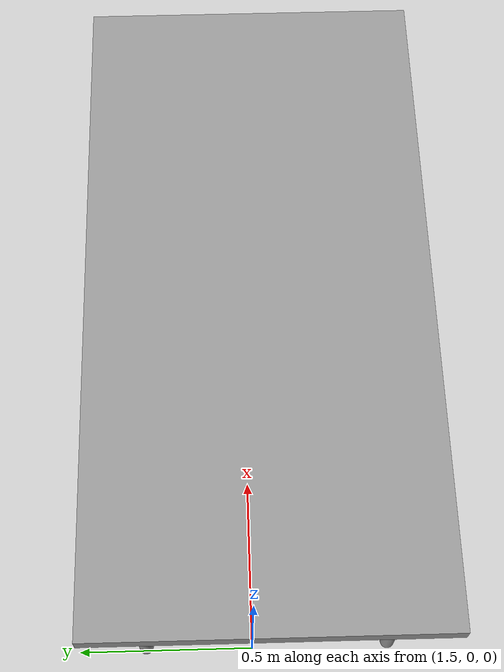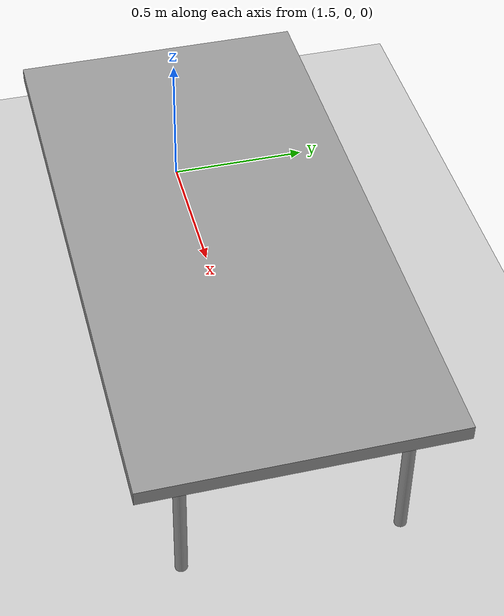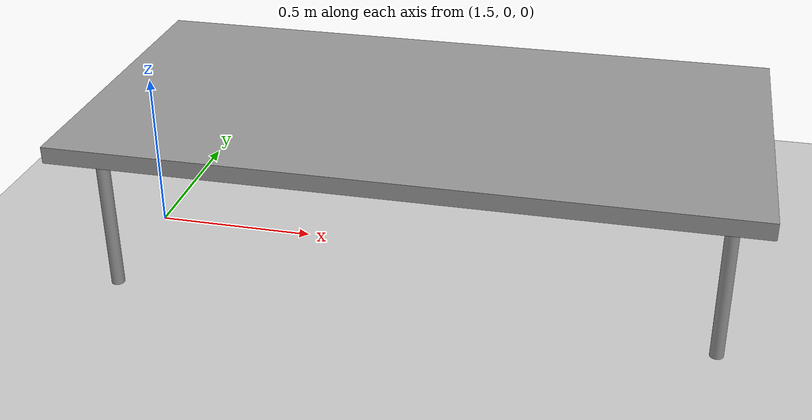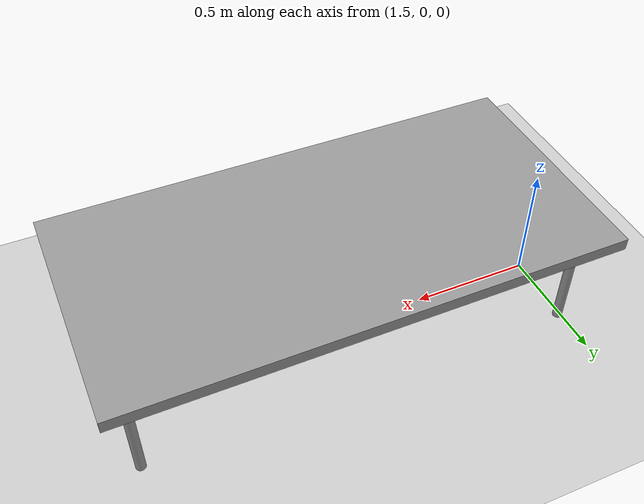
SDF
<sdf version="1.7">
 <world name="default">
  <model name="ground_plane">
   <static>1</static>
   <link name="link">
    <collision name="collision">
     <geometry><plane><normal>0 0 1</normal><size>100 100</size></plane></geometry>
     <surface><friction><ode><mu>100</mu><mu2>50</mu2></ode></friction></surface>
    </collision>
    <visual name="visual">
     <cast_shadows>0</cast_shadows>
     <geometry><plane><normal>0 0 1</normal><size>100 100</size></plane></geometry>
     <material>
      <script><uri>file://media/materials/scripts/gazebo.material</uri><name>Gazebo/Grey</name></script>
     </material>
    </visual>
   </link>
  </model>
  <model name="robcup_bed_1">
   <link name="link">
    <inertial>
     <mass>100</mass>
     <inertia><ixx>2.09333</ixx><ixy>0</ixy><ixz>0</ixz><iyy>2.09333</iyy><iyz>0</iyz><izz>0.02</izz></inertia>
    </inertial>
    <visual name="visual1">
     <pose>0 0 0.5 0 -0 0</pose>
     <geometry><box><size>2 1 0.05</size></box></geometry>
     <material>
      <script><uri>file://media/materials/scripts/gazebo.material</uri><name>Gazebo/Grey</name></script>
      <shader type="pixel"><normal_map>__default__</normal_map></shader>
      <ambient>1 1 1 1</ambient>
      <diffuse>1 1 1 1</diffuse>
      <specular>0.2 0.2 0.2 1</specular>
      <emissive>0 0 0 1</emissive>
     </material>
    </visual>
    <visual name="front_right_leg">
     <pose>0.9 -0.35 0.25 0 -0 0</pose>
     <geometry><cylinder><radius>0.02</radius><length>0.5</length></cylinder></geometry>
     <material>
      <script><uri>file://media/materials/scripts/gazebo.material</uri><name>Gazebo/Grey</name></script>
      <shader type="pixel"><normal_map>__default__</normal_map></shader>
      <ambient>0.3 0.3 0.3 1</ambient>
      <diffuse>0.7 0.7 0.7 1</diffuse>
      <specular>0.01 0.01 0.01 1</specular>
      <emissive>0 0 0 1</emissive>
     </material>
    </visual>
    <visual name="front_left_leg">
     <pose>0.9 0.35 0.25 0 -0 0</pose>
     <geometry><cylinder><radius>0.02</radius><length>0.5</length></cylinder></geometry>
     <material>
      <script><uri>file://media/materials/scripts/gazebo.material</uri><name>Gazebo/Grey</name></script>
      <shader type="pixel"><normal_map>__default__</normal_map></shader>
      <ambient>0.3 0.3 0.3 1</ambient>
      <diffuse>0.7 0.7 0.7 1</diffuse>
      <specular>0.01 0.01 0.01 1</specular>
      <emissive>0 0 0 1</emissive>
     </material>
    </visual>
    <visual name="back_right_leg">
     <pose>-0.9 -0.35 0.25 0 -0 0</pose>
     <geometry><cylinder><radius>0.02</radius><length>0.5</length></cylinder></geometry>
     <material>
      <script><uri>file://media/materials/scripts/gazebo.material</uri><name>Gazebo/Grey</name></script>
      <shader type="pixel"><normal_map>__default__</normal_map></shader>
      <ambient>0.3 0.3 0.3 1</ambient>
      <diffuse>0.7 0.7 0.7 1</diffuse>
      <specular>0.01 0.01 0.01 1</specular>
      <emissive>0 0 0 1</emissive>
     </material>
    </visual>
    <visual name="back_left_leg">
     <pose>-0.9 0.35 0.25 0 -0 0</pose>
     <geometry><cylinder><radius>0.02</radius><length>0.5</length></cylinder></geometry>
     <material>
      <script><uri>file://media/materials/scripts/gazebo.material</uri><name>Gazebo/Grey</name></script>
      <shader type="pixel"><normal_map>__default__</normal_map></shader>
      <ambient>0.3 0.3 0.3 1</ambient>
      <diffuse>0.7 0.7 0.7 1</diffuse>
      <specular>0.01 0.01 0.01 1</specular>
      <emissive>0 0 0 1</emissive>
     </material>
    </visual>
    <collision name="front_left_leg">
     <pose>-0.9 0.35 0.25 0 -0 0</pose>
     <geometry><cylinder><radius>0.02</radius><length>0.5</length></cylinder></geometry>
     <surface>
      <friction>
       <ode><mu>1</mu><mu2>1</mu2><fdir1>0 0 0</fdir1><slip1>0</slip1><slip2>0</slip2></ode>
       <torsional>
        <coefficient>1</coefficient>
        <patch_radius>0</patch_radius>
        <surface_radius>0</surface_radius>
        <use_patch_radius>1</use_patch_radius>
        <ode><slip>0</slip></ode>
       </torsional>
      </friction>
      <bounce><restitution_coefficient>0</restitution_coefficient><threshold>1e+06</threshold></bounce>
      <contact>
       <collide_without_contact>0</collide_without_contact>
       <collide_without_contact_bitmask>1</collide_without_contact_bitmask>
       <collide_bitmask>1</collide_bitmask>
       <ode>
        <soft_cfm>0</soft_cfm>
        <soft_erp>0.2</soft_erp>
        <kp>1e+13</kp>
        <kd>1</kd>
        <max_vel>0.01</max_vel>
        <min_depth>0</min_depth>
       </ode>
       <bullet>
        <split_impulse>1</split_impulse>
        <split_impulse_penetration_threshold>-0.01</split_impulse_penetration_threshold>
        <soft_cfm>0</soft_cfm>
        <soft_erp>0.2</soft_erp>
        <kp>1e+13</kp>
        <kd>1</kd>
       </bullet>
      </contact>
     </surface>
    </collision>
    <collision name="surface">
     <pose>0 0 0.5 0 -0 0</pose>
     <geometry><box><size>2 1 0.03</size></box></geometry>
     <surface>
      <friction>
       <ode><mu>0.6</mu><mu2>0.6</mu2><fdir1>0 0 0</fdir1><slip1>0</slip1><slip2>0</slip2></ode>
       <torsional>
        <coefficient>1</coefficient>
        <patch_radius>0</patch_radius>
        <surface_radius>0</surface_radius>
        <use_patch_radius>1</use_patch_radius>
        <ode><slip>0</slip></ode>
       </torsional>
      </friction>
      <bounce><restitution_coefficient>0</restitution_coefficient><threshold>1e+06</threshold></bounce>
      <contact>
       <collide_without_contact>0</collide_without_contact>
       <collide_without_contact_bitmask>1</collide_without_contact_bitmask>
       <collide_bitmask>1</collide_bitmask>
       <ode>
        <soft_cfm>0</soft_cfm>
        <soft_erp>0.2</soft_erp>
        <kp>1e+13</kp>
        <kd>1</kd>
        <max_vel>0.01</max_vel>
        <min_depth>0</min_depth>
       </ode>
       <bullet>
        <split_impulse>1</split_impulse>
        <split_impulse_penetration_threshold>-0.01</split_impulse_penetration_threshold>
        <soft_cfm>0</soft_cfm>
        <soft_erp>0.2</soft_erp>
        <kp>1e+13</kp>
        <kd>1</kd>
       </bullet>
      </contact>
     </surface>
    </collision>
    <collision name="back_left_leg">
     <pose>-0.9 0.35 0.25 0 -0 0</pose>
     <geometry><cylinder><radius>0.02</radius><length>0.5</length></cylinder></geometry>
     <surface>
      <friction>
       <ode><mu>1</mu><mu2>1</mu2><fdir1>0 0 0</fdir1><slip1>0</slip1><slip2>0</slip2></ode>
       <torsional>
        <coefficient>1</coefficient>
        <patch_radius>0</patch_radius>
        <surface_radius>0</surface_radius>
        <use_patch_radius>1</use_patch_radius>
        <ode><slip>0</slip></ode>
       </torsional>
      </friction>
      <bounce><restitution_coefficient>0</restitution_coefficient><threshold>1e+06</threshold></bounce>
      <contact>
       <collide_without_contact>0</collide_without_contact>
       <collide_without_contact_bitmask>1</collide_without_contact_bitmask>
       <collide_bitmask>1</collide_bitmask>
       <ode>
        <soft_cfm>0</soft_cfm>
        <soft_erp>0.2</soft_erp>
        <kp>1e+13</kp>
        <kd>1</kd>
        <max_vel>0.01</max_vel>
        <min_depth>0</min_depth>
       </ode>
       <bullet>
        <split_impulse>1</split_impulse>
        <split_impulse_penetration_threshold>-0.01</split_impulse_penetration_threshold>
        <soft_cfm>0</soft_cfm>
        <soft_erp>0.2</soft_erp>
        <kp>1e+13</kp>
        <kd>1</kd>
       </bullet>
      </contact>
     </surface>
    </collision>
    <collision name="back_right_leg">
     <pose>-0.9 -0.35 0.25 0 -0 0</pose>
     <geometry><cylinder><radius>0.02</radius><length>0.5</length></cylinder></geometry>
     <surface>
      <friction>
       <ode><mu>1</mu><mu2>1</mu2><fdir1>0 0 0</fdir1><slip1>0</slip1><slip2>0</slip2></ode>
       <torsional>
        <coefficient>1</coefficient>
        <patch_radius>0</patch_radius>
        <surface_radius>0</surface_radius>
        <use_patch_radius>1</use_patch_radius>
        <ode><slip>0</slip></ode>
       </torsional>
      </friction>
      <bounce><restitution_coefficient>0</restitution_coefficient><threshold>1e+06</threshold></bounce>
      <contact>
       <collide_without_contact>0</collide_without_contact>
       <collide_without_contact_bitmask>1</collide_without_contact_bitmask>
       <collide_bitmask>1</collide_bitmask>
       <ode>
        <soft_cfm>0</soft_cfm>
        <soft_erp>0.2</soft_erp>
        <kp>1e+13</kp>
        <kd>1</kd>
        <max_vel>0.01</max_vel>
        <min_depth>0</min_depth>
       </ode>
       <bullet>
        <split_impulse>1</split_impulse>
        <split_impulse_penetration_threshold>-0.01</split_impulse_penetration_threshold>
        <soft_cfm>0</soft_cfm>
        <soft_erp>0.2</soft_erp>
        <kp>1e+13</kp>
        <kd>1</kd>
       </bullet>
      </contact>
     </surface>
    </collision>
    <collision name="front_right_leg">
     <pose>0.9 -0.35 0.25 0 -0 0</pose>
     <geometry><cylinder><radius>0.02</radius><length>0.5</length></cylinder></geometry>
     <surface>
      <friction>
       <ode><mu>1</mu><mu2>1</mu2><fdir1>0 0 0</fdir1><slip1>0</slip1><slip2>0</slip2></ode>
       <torsional>
        <coefficient>1</coefficient>
        <patch_radius>0</patch_radius>
        <surface_radius>0</surface_radius>
        <use_patch_radius>1</use_patch_radius>
        <ode><slip>0</slip></ode>
       </torsional>
      </friction>
      <bounce><restitution_coefficient>0</restitution_coefficient><threshold>1e+06</threshold></bounce>
      <contact>
       <collide_without_contact>0</collide_without_contact>
       <collide_without_contact_bitmask>1</collide_without_contact_bitmask>
       <collide_bitmask>1</collide_bitmask>
       <ode>
        <soft_cfm>0</soft_cfm>
        <soft_erp>0.2</soft_erp>
        <kp>1e+13</kp>
        <kd>1</kd>
        <max_vel>0.01</max_vel>
        <min_depth>0</min_depth>
       </ode>
       <bullet>
        <split_impulse>1</split_impulse>
        <split_impulse_penetration_threshold>-0.01</split_impulse_penetration_threshold>
        <soft_cfm>0</soft_cfm>
        <soft_erp>0.2</soft_erp>
        <kp>1e+13</kp>
        <kd>1</kd>
       </bullet>
      </contact>
     </surface>
    </collision>
   </link>
   <static>1</static>
   <pose>2.41121 -0.042167 0 0 -0 0</pose>
  </model>
 </world>
</sdf>
